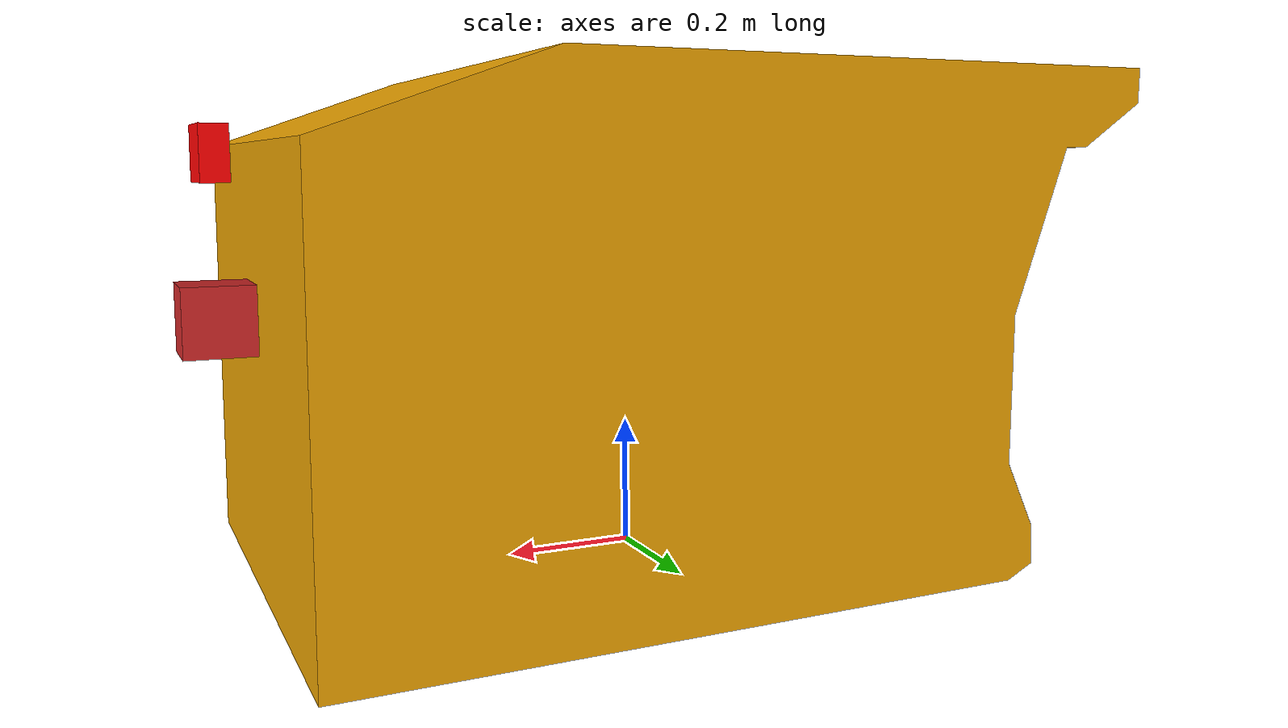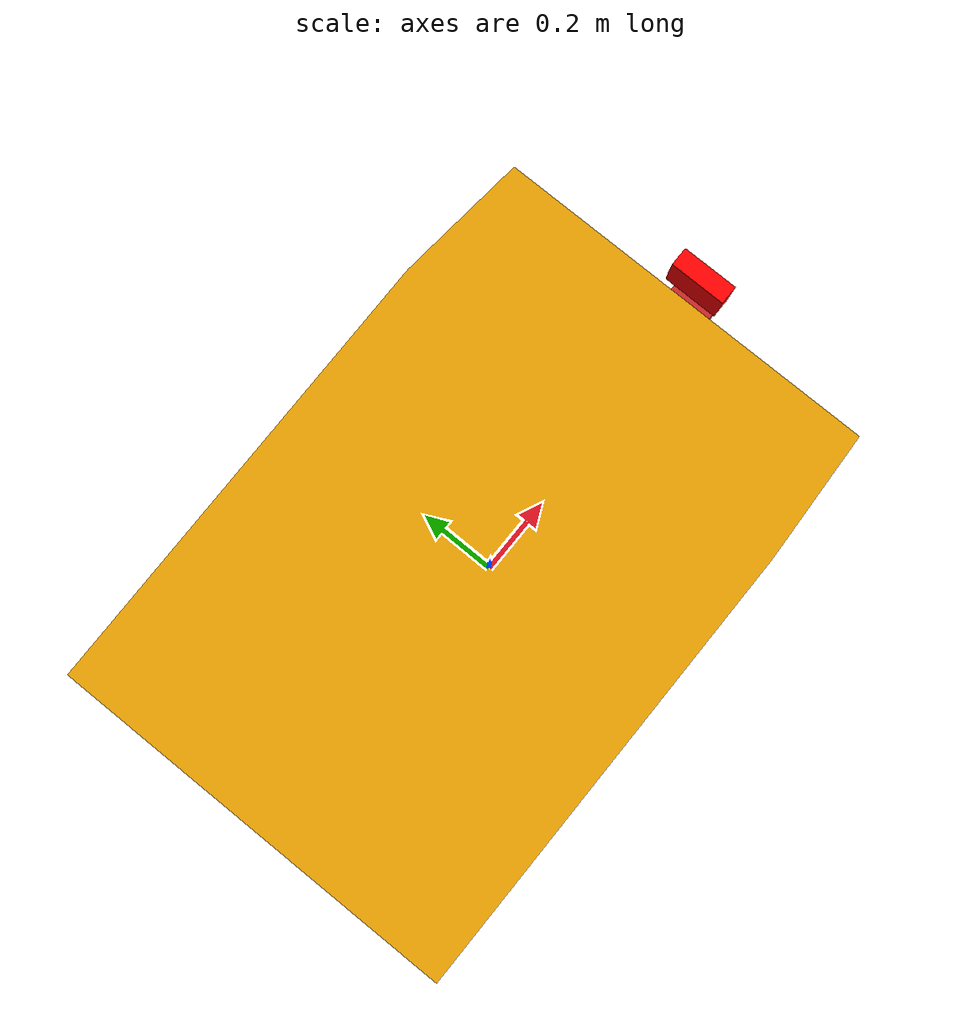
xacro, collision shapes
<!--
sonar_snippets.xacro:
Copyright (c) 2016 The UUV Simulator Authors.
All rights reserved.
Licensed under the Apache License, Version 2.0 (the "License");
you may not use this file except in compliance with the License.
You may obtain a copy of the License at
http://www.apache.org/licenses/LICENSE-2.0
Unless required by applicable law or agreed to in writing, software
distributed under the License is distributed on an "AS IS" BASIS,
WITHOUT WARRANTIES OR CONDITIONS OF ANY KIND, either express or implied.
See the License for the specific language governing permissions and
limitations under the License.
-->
<?xml version="1.0"?>

<robot name="rov" xmlns:xacro="http://www.ros.org/wiki/xacro">

  <xacro:arg name="namespace" default="rov"/>

    <!-- Necessary for sensors -->
    <xacro:include filename="$(find deep_ocean)/urdf_xacro_files/sensors_and_actuators/sonar_snippets.xacro" />
    <xacro:include filename="$(find deep_ocean)/urdf_xacro_files/sensors_and_actuators/sensor_snippets.xacro" />
    <!-- Necessary for thrusters -->
    <xacro:include filename="$(find deep_ocean)/urdf_xacro_files/sensors_and_actuators/actuators.xacro" />
    <xacro:include filename="$(find uuv_descriptions)/urdf/common.urdf.xacro" />
    <xacro:include filename="$(find deep_ocean)/urdf_xacro_files/sensors_and_actuators/thruster_snippets.xacro" />
    <!-- Necessary for state publishing -->
    <xacro:include filename="$(find uuv_gazebo_ros_plugins)/urdf/misc.xacro" />

    <!-- Fluid Density of Water (kg/m³) -->
    <xacro:property name="fluid_density" value="1028"/>

    <!-- Hardcoded Dimensions from the Collision Mesh -->
    <xacro:property name="size_y" value="0.833"/> <!-- Width -->
    <xacro:property name="size_x" value="1.25"/>  <!-- Length -->
    <xacro:property name="size_z" value="0.77"/>  <!-- Height -->

    <!-- Mass of the ROV -->
    <xacro:property name="mass" value="326"/>

    <!-- Compute Volume to Ensure Neutral Buoyancy -->
    <xacro:property name="volume" value="${mass / fluid_density}"/>

    <!-- Center of Buoyancy Adjusted -->
    <xacro:property name="cob_z" value="${0.5 * size_z}"/>

    <!-- Inertia Calculation -->
    <xacro:property name="ixx" value="${(1/12) * mass * (size_x * size_x + size_z * size_z)}"/>
    <xacro:property name="iyy" value="${(1/12) * mass * (size_y * size_y + size_z * size_z)}"/>
    <xacro:property name="izz" value="${(1/12) * mass * (size_y * size_y + size_x * size_x)}"/>

    <!-- Define Base Link -->
    <link name="$(arg namespace)/base_link">
        <inertial>
            <mass value="${mass}"/>
            <origin xyz="0 0 0" rpy="0 0 0"/>
            <inertia ixx="${ixx}" ixy="0.0" ixz="0.0" iyy="${iyy}" iyz="0.0" izz="${izz}"/>
        </inertial>

        <!-- Visual Representation -->
        <visual>
            <geometry>
                <mesh filename="package://deep_ocean/meshes/rov_visual.dae" scale="1 1 1"/>
            </geometry>
        </visual>

        <!-- Collision Geometry -->
        <collision>
            <origin xyz="0 0 0" rpy="0 0 0"/>
            <geometry>
                <mesh filename="package://deep_ocean/meshes/rov_collision.stl" scale="1 1 1"/>
            </geometry>
        </collision>
    </link>

    <!-- Initiating thrusters from UUV -->
  <xacro:thruster_macro namespace="$(arg namespace)" thruster_id="0">
    <origin xyz="0.56374 0.22357 0.38038" rpy="1.5708 0 ${-0.6981}"/>
  </xacro:thruster_macro>
  <xacro:thruster_macro namespace="$(arg namespace)" thruster_id="1">
    <origin xyz="-0.15606 0.3381 0.38038" rpy="1.5708 0 ${0.6981}"/>
  </xacro:thruster_macro>
  <xacro:thruster_macro namespace="$(arg namespace)" thruster_id="2">
    <origin xyz="-0.060821 0.30171 0.70723" rpy="0.1745 ${-0.3491-pi/2} ${pi/2}"/>
  </xacro:thruster_macro>
  <xacro:thruster_macro namespace="$(arg namespace)" thruster_id="3">
    <origin xyz="0.56374 -0.22357 0.38038" rpy="1.5708 0 ${0.6981}"/>
  </xacro:thruster_macro>
  <xacro:thruster_macro namespace="$(arg namespace)" thruster_id="4">
    <origin xyz="-0.060821 -0.3017 0.70723" rpy="0.1745 ${0.3491-pi/2} ${pi/2}"/>
  </xacro:thruster_macro>
  <xacro:thruster_macro namespace="$(arg namespace)" thruster_id="5">
    <origin xyz="-0.15606 -0.3381 0.38038" rpy="1.5708 0 ${-0.6981}"/>
  </xacro:thruster_macro>
  <xacro:thruster_macro namespace="$(arg namespace)" thruster_id="6">
    <origin xyz="0.39991 -0.002266 0.70723" rpy="-0.3491 ${-pi/2} ${pi/2}"/>
  </xacro:thruster_macro>

  <xacro:default_joint_state_publisher namespace="$(arg namespace)" update_rate="50"/>

    <gazebo>
      <plugin name="uuv_plugin" filename="libuuv_underwater_object_ros_plugin.so">
        <fluid_density>${fluid_density}</fluid_density>
        <flow_velocity_topic>hydrodynamics/current_velocity</flow_velocity_topic>
        <debug>0</debug>
        <link name="$(arg namespace)/base_link">
          <neutrally_buoyant>1</neutrally_buoyant>  <!-- Ensures mass and volume decide float/sink -->
          <volume>${volume}</volume>
          <box>
              <width>${size_y}</width>
              <length>${size_x}</length>
              <height>${size_z}</height>
          </box>
          <center_of_buoyancy>0 0 ${cob_z}</center_of_buoyancy>

          <!-- Hydrodynamic Model using Fossen type -->
          <hydrodynamic_model>
              <type>fossen</type>

              <!-- Rough Added Mass Estimation -->
              <added_mass>
                  ${0.1 * mass}  0  0  0  0  0
                  0  ${0.1 * mass}  0  0  0  0
                  0  0  ${0.1 * mass}  0  0  0
                  0  0  0  ${0.05 * mass}  0  0
                  0  0  0  0  ${0.05 * mass}  0
                  0  0  0  0  0  ${0.05 * mass}
              </added_mass>

              <!-- Rough Linear Damping Estimation -->
              <linear_damping>
                  ${-100 * size_y} ${-100 * size_x} ${-100 * size_z}
                  ${-40 * size_z} ${-40 * size_x} ${-40 * size_y}
              </linear_damping>

              <!-- Rough Quadratic Damping Estimation -->
              <quadratic_damping>
                  ${-120 * size_y} ${-120 * size_x} ${-120 * size_z}
                  ${-50 * size_z} ${-50 * size_x} ${-50 * size_y}
              </quadratic_damping>

          </hydrodynamic_model>

        </link>
      </plugin>
      <!-- Odometry for the PID -->
      <plugin name="p3d_base_controller" filename="libgazebo_ros_p3d.so">
        <robotNamespace>/$(arg namespace)</robotNamespace>
        <bodyName>$(arg namespace)/base_link</bodyName>
        <topicName>pose_gt</topicName>
        <frameName>world</frameName>
        <updateRate>30</updateRate>
      </plugin>
    </gazebo>

    <!-- 3D sonar -->
    <xacro:sonar_3d parent_link="$(arg namespace)/base_link" namespace="$(arg namespace)" scale_factor="1">
        <origin xyz="0.63 0 0.63" rpy="0 0 0"/>
    </xacro:sonar_3d>

    <!-- imu sensor -->
    <xacro:imu_sensor parent_link="$(arg namespace)/base_link" namespace="$(arg namespace)">
        <origin xyz="0 0 0.63" rpy="0 0 0"/>
    </xacro:imu_sensor>

    <!-- camera -->
    <xacro:camera_sensor parent_link="$(arg namespace)/base_link" namespace="$(arg namespace)">
    <origin xyz="0.63 0 0.4" rpy="0 0 0"/>
    </xacro:camera_sensor>

</robot>

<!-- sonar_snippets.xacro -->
<robot xmlns:xacro="http://www.ros.org/wiki/xacro">

  <!-- Macro for a minimal collision block (for when you do not want collision block but gazebo needs one) -->
  <xacro:macro name="no_collision">
    <collision>
      <geometry>
        <cylinder length="${0.000001}" radius="${0.000001}" />
      </geometry>
      <origin xyz="0 0 0" rpy="0 ${0.5*pi} 0"/>
    </collision>
  </xacro:macro>

  <!-- Inspired by m450-130: http://www.blueview.com/products/2d-imaging-sonar/m900-series/ -->
  <xacro:macro name="forward_multibeam_sonar_m450_130" params="namespace parent_link visualize:=false *origin">
    <xacro:multibeam_sonar
      namespace="${namespace}"
      suffix=""
      parent_link="${parent_link}"
      topic="sonar"
      mass="0.0001"
      update_rate="25"
      samples="768"
      fov="2.27"
      range_min="1.0"
      range_max="100.0"
      range_stddev="0.027"
      mesh=""
      visualize="${visualize}">
      <inertia ixx="0.00001" ixy="0.0" ixz="0.0" iyy="0.00001" iyz="0.0" izz="0.00001" />
      <xacro:insert_block name="origin" />
      <visual>
        <geometry>
          <mesh filename="file://$(find uuv_sensor_ros_plugins)/meshes/m450-130.dae" scale="0.5 0.5 0.5"/>
        </geometry>
      </visual>
    </xacro:multibeam_sonar>
  </xacro:macro>

  <xacro:macro name="multibeam_sonar"
    params="namespace suffix parent_link topic mass update_rate
      samples fov range_min range_max range_stddev mesh visualize
      *inertia *origin *visual">
    <!-- Sensor link -->
    <link name="${namespace}/sonar${suffix}_link">
      <inertial>
        <xacro:insert_block name="inertia" />
        <mass value="${mass}" />
        <origin xyz="1 0 0" rpy="0 0 0" />
      </inertial>

      <xacro:insert_block name="visual" />
      <xacro:no_collision/>
    </link>

  <joint name="${namespace}_sonar${suffix}_joint" type="revolute">
    <xacro:insert_block name="origin" />
    <parent link="${parent_link}" />
    <child link="${namespace}/sonar${suffix}_link" />
    <limit upper="0" lower="0" effort="0" velocity="0" />
    <axis xyz="1 0 0"/>
  </joint>

  <gazebo reference="${namespace}/sonar${suffix}_link">
    <sensor type="gpu_ray" name="sonar${suffix}">
      <pose>0 0 0 0 0 0</pose>
      <visualize>${visualize}</visualize>
      <update_rate>${update_rate}</update_rate>
      <ray>
        <scan>
          <horizontal>
            <samples>${samples}</samples>
            <resolution>1</resolution>
            <min_angle>-${0.5*fov}</min_angle>
            <max_angle>${0.5*fov}</max_angle>
          </horizontal>
        </scan>
        <range>
          <min>${range_min}</min>
          <max>${range_max}</max>
          <resolution>0.01</resolution>
        </range>
        <noise>
          <type>gaussian</type>
          <mean>0.0</mean>
          <stddev>${range_stddev}</stddev>
        </noise>
      </ray>
      <plugin name="sonar${suffix}_controller" filename="libgazebo_ros_gpu_laser.so">
        <topicName>${topic}</topicName>
        <frameName>sonar${suffix}_link</frameName>
      </plugin>
      <!-- TODO: Separate switchable sonar version in another macro -->
    </sensor>
  </gazebo>
  </xacro:macro>

  <!-- Macro a 3d depth sonar -->
<xacro:macro name="sonar_3d" params="parent_link namespace scale_factor:=1.0 *origin">

    <link name="${namespace}/sonar_3d_link">
      <visual>
        <geometry>
          <box size="${scale_factor*0.04} ${scale_factor*0.12} ${scale_factor*0.08}"/>
        </geometry>
        <material name="red">
          <color rgba="1 0 0 1"/>
        </material>
      </visual>
      <inertial>
        <mass value="0.0"/>
        <origin xyz="0 0 0"/>
        <inertia ixx="${scale_factor*0.1}" ixy="0.0" ixz="0.0" iyy="${scale_factor*0.1}" iyz="0.0" izz="${scale_factor*0.1}"/>
      </inertial>
      <collision>
        <geometry>
          <box size="${scale_factor*0.04} ${scale_factor*0.12} ${scale_factor*0.08}"/>
        </geometry>
      </collision>
    </link>

    <joint name="${namespace}/sonar_3d_joint" type="fixed">
      <parent link="${parent_link}"/>
      <child link="${namespace}/sonar_3d_link"/>
      <xacro:insert_block name="origin" />
    </joint>

    <link name="${namespace}/sonar_3d_optical_link"/>
    <joint name="${namespace}/sonar_3d_optical_joint" type="fixed">
      <parent link="${namespace}/sonar_3d_link"/>
      <child link="${namespace}/sonar_3d_optical_link"/>
      <origin xyz="0 0 0" rpy="-1.57 0 -1.57"/>
    </joint>

    <gazebo reference="${namespace}/sonar_3d_link">
      <material>Gazebo/Red</material>
      <sensor name="sonar_3d_sensor" type="depth">
        <visualize>true</visualize>
        <updateRate>5</updateRate>
        <camera>
          <horizontal_fov>1.57</horizontal_fov>
          <vertical_fov>0.698</vertical_fov>
          <image>
            <width>160</width>
            <height>100</height>
          </image>
          <clip>
            <near>0.02</near>
            <far>15.0</far>     <!-- Change the length of field of view-->
          </clip>
        </camera>
        <plugin name="sonar_3d_plugin" filename="libgazebo_ros_openni_kinect.so">
          <cameraName>${namespace}/sonar_3d</cameraName>
          <frameName>${namespace}/sonar_3d_optical_link</frameName>
          <alwaysOn>true</alwaysOn>
          <pointCloudTopicName>points</pointCloudTopicName>
          <imageTopicName>rgb/image_raw</imageTopicName>
          <depthImageTopicName>depth/image_raw</depthImageTopicName>
          <cameraInfoTopicName>rgb/camera_info</cameraInfoTopicName>
          <depthImageCameraInfoTopicName>depth/camera_info</depthImageCameraInfoTopicName>
        </plugin>
      </sensor>
    </gazebo>
</xacro:macro>

</robot>

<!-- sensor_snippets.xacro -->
<robot xmlns:xacro="http://www.ros.org/wiki/xacro">

    <!-- IMU sensor macro -->
    <xacro:macro name="imu_sensor" params="parent_link namespace *origin">
    <link name="${namespace}/imu_link">
        <visual>
            <geometry>
                <box size="0.01 0.01 0.01" />
            </geometry>
            <material name="red">
                <color rgba="1 0 0 1" />
            </material>
        </visual>
        <inertial>
            <mass value="0.0" />
            <origin xyz="0 0 0" />
            <inertia ixx="0.1" ixy="0.0" ixz="0.0" iyy="0.1" iyz="0.0" izz="0.1" />
        </inertial>
        <collision>
            <geometry>
                <box size="0.01 0.01 0.01" />
            </geometry>
        </collision>
    </link>

    <joint name="${namespace}/imu_joint" type="fixed">
        <parent link="${parent_link}" />
        <child link="${namespace}/imu_link" />
        <xacro:insert_block name="origin" />
    </joint>

    <gazebo reference="${namespace}/imu_link">
        <gravity>true</gravity>
        <sensor name="imu_sensor" type="imu">
        <always_on>true</always_on>
        <update_rate>10</update_rate>
        <visualize>true</visualize>
        <topic>__default_topic__</topic>
        <plugin filename="libgazebo_ros_imu_sensor.so" name="imu_plugin">
            <topicName>imu</topicName>
            <bodyName>${namespace}/imu_link</bodyName>
            <updateRateHZ>10.0</updateRateHZ>
            <gaussianNoise>0.0</gaussianNoise>
            <xyzOffset>0 0 0</xyzOffset>
            <rpyOffset>0 0 0</rpyOffset>
            <frameName>${namespace}/imu_link</frameName>
            <initialOrientationAsReference>false</initialOrientationAsReference>
        </plugin>
        <pose>0 0 0 0 0 0</pose>
        </sensor>
    </gazebo>
    </xacro:macro>

    <!-- camera sensor macro -->
    <xacro:macro name="camera_sensor" params="parent_link namespace *origin">
    <link name="${namespace}/camera_link">
        <visual>
            <geometry>
                <mesh filename="file://$(find deep_ocean)/meshes/exploreHD_camera.stl" />
            </geometry>
        </visual>
        <inertial>
            <mass value="0.2" />
            <origin xyz="0 0 0" />
        <inertia ixx="0.1" ixy="0.0" ixz="0.0" iyy="0.1" iyz="0.0" izz="0.1" />
        </inertial>
        <collision>
            <geometry>
                <box size="0.1 0.1 0.1" />
            </geometry>
        </collision>
    </link>

    <joint name="${namespace}/camera_joint" type="fixed">
        <parent link="${parent_link}" />
        <child link="${namespace}/camera_link" />
        <xacro:insert_block name="origin" />
    </joint>

    <link name="${namespace}/camera_link_optical"/>

    <joint name="${namespace}/camera_optical_joint" type="fixed">
        <parent link="${namespace}/camera_link" />
        <child link="${namespace}/camera_link_optical" />
        <origin xyz="0 0 0" rpy="-1.57 0 -1.57"/>
    </joint>

    <gazebo reference="${namespace}/camera_link">
        <material>Gazebo/Red</material>
        <sensor type="camera" name="camera_sensor">
        <pose>0 0 0 0 0 0</pose>
        <update_rate>30</update_rate>
        <camera>
            <horizontal_fov>1.047</horizontal_fov>
            <image>
            <width>1920</width>
            <height>1080</height>
            <format>R8G8B8</format>
            </image>
            <clip>
            <near>0.1</near>
            <far>10</far>
            </clip>
        </camera>
        <plugin name="camera_controller" filename="libgazebo_ros_camera.so">
            <frameName>${namespace}/camera_link_optical</frameName>
            <alwaysOn>true</alwaysOn>
            <updateRate>0.0</updateRate>
            <cameraName>camera</cameraName>
            <imageTopicName>image_raw</imageTopicName>
            <cameraInfoTopicName>camera_info</cameraInfoTopicName>
        </plugin>
        </sensor>
    </gazebo>
    </xacro:macro>

</robot>

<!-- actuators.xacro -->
<robot xmlns:xacro="http://www.ros.org/wiki/xacro">

  <xacro:property name="prop_mesh_file" value="file://$(find uuv_descriptions)/meshes/prop.dae" />
  <!--xacro:property name="prop_mesh_file" value="file://$(find rexrov2_description)/meshes/Propeller.dae" /-->

  <!-- Thruster joint and link snippet -->
  <xacro:macro name="thruster_macro"
    params="namespace thruster_id mesh_scale:=0.5 *origin">
    <xacro:thruster_module_first_order_basic_fcn_macro
      namespace="${namespace}"
      thruster_id="${thruster_id}"
      mesh_filename="${prop_mesh_file}"
      mesh_scale="${mesh_scale}"
      dyn_time_constant="0.05"
      rotor_constant="0.026546960744430276">
      <xacro:insert_block name="origin"/>
    </xacro:thruster_module_first_order_basic_fcn_macro>
  </xacro:macro>

</robot>

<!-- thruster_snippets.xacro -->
<robot xmlns:xacro="http://www.ros.org/wiki/xacro">

  <!-- ROTOR DYNAMICS MACROS -->

  <!-- First order dynamics -->

  <xacro:macro name="rotor_dyn_first_order_macro" params="time_constant">
    <dynamics>
      <type>FirstOrder</type>
      <timeConstant>${time_constant}</timeConstant>
    </dynamics>
  </xacro:macro>

  <!--
    MACROS FOR CONVERSION FUNCTIONS BETWEEN ROTOR'S ANG. VELOCITY AND
    THRUSTER FORCE
  -->

  <!--
    1) Basic curve
      Input: x
      Output: thrust
      Function: thrust = rotorConstant * x * abs(x)
  -->
  <xacro:macro name="thruster_cf_basic_macro"
    params="rotor_constant">
    <conversion>
      <type>Basic</type>
      <rotorConstant>${rotor_constant}</rotorConstant>
    </conversion>
  </xacro:macro>

  <xacro:macro name="thruster_cf_dead_zone_macro"
    params="rotor_constant_l
            rotor_constant_r
            delta_l
            delta_r">
    <conversion>
      <type>Bessa</type>
      <rotorConstantL>${rotor_constant_l}</rotorConstantL>
      <rotorConstantR>${rotor_constant_r}</rotorConstantR>
      <deltaL>${delta_l}</deltaL>
      <deltaR>${delta_r}</deltaR>
    </conversion>
  </xacro:macro>

  <xacro:macro name="thruster_cf_linear_interp_macro"
    params="input_values
            output_values">
    <conversion>
      <type>LinearInterp</type>
      <inputValues>${input_values}</inputValues>
      <outputValues>${output_values}</outputValues>
    </conversion>
  </xacro:macro>

  <!-- THRUSTER MODULE MACROS  -->

  <xacro:macro name="generic_thruster_macro"
    params="namespace
            thruster_id
            *origin
            mesh_filename
            mesh_scale
            *dynamics
            *conversion">
    <joint name="${namespace}/thruster_${thruster_id}_joint" type="continuous">
      <xacro:insert_block name="origin"/>
      <axis xyz="1 0 0"/>
      <parent link="${namespace}/base_link"/>
      <child link="${namespace}/thruster_${thruster_id}"/>
    </joint>

    <link name="${namespace}/thruster_${thruster_id}">
      <xacro:box_inertial x="0" y="0" z="0" mass="0.000000001">
        <origin xyz="0 0 0" rpy="0 0 0"/>
      </xacro:box_inertial>
      <visual>
        <origin rpy="0 0 0" xyz="0 0 0"/>
        <geometry>
          <mesh filename="${mesh_filename}" scale="${mesh_scale} ${mesh_scale} ${mesh_scale}"/>
        </geometry>
      </visual>
      <collision>
        <!-- todo: gazebo needs a collision volume or it will ignore the pose of
           the joint that leads to this link (and assume it to be the identity) -->
        <geometry>
          <cylinder length="0.000001" radius="0.000001"/>
        </geometry>
        <origin xyz="0 0 0" rpy="0 0 0"/>
      </collision>
    </link>

    <gazebo>
      <plugin name="${namespace}_${thruster_id}_thruster_model" filename="libuuv_thruster_ros_plugin.so">
        <linkName>${namespace}/thruster_${thruster_id}</linkName>
        <jointName>${namespace}/thruster_${thruster_id}_joint</jointName>
        <thrusterID>${thruster_id}</thrusterID>
        <xacro:insert_block name="dynamics"/>
        <xacro:insert_block name="conversion"/>
      </plugin>
    </gazebo>

    <gazebo reference="${namespace}/thruster_${thruster_id}">
      <selfCollide>false</selfCollide>
    </gazebo>
  </xacro:macro>

  <!--
    Thruster model with first order dynamic model for the rotor dynamics
    and a proportional non-linear steady-state conversion from the rotor's
    angular velocity to output thrust force
  -->

  <xacro:macro name="thruster_module_first_order_basic_fcn_macro"
      params="namespace
              thruster_id
              *origin
              mesh_filename
              mesh_scale
              dyn_time_constant
              rotor_constant">
    <xacro:generic_thruster_macro
      namespace="${namespace}"
      thruster_id="${thruster_id}"
      mesh_filename="${mesh_filename}"
      mesh_scale="${mesh_scale}">
      <xacro:insert_block name="origin"/>
      <xacro:rotor_dyn_first_order_macro time_constant="${dyn_time_constant}"/>
      <xacro:thruster_cf_basic_macro rotor_constant="${rotor_constant}"/>
    </xacro:generic_thruster_macro>
  </xacro:macro>

</robot>
